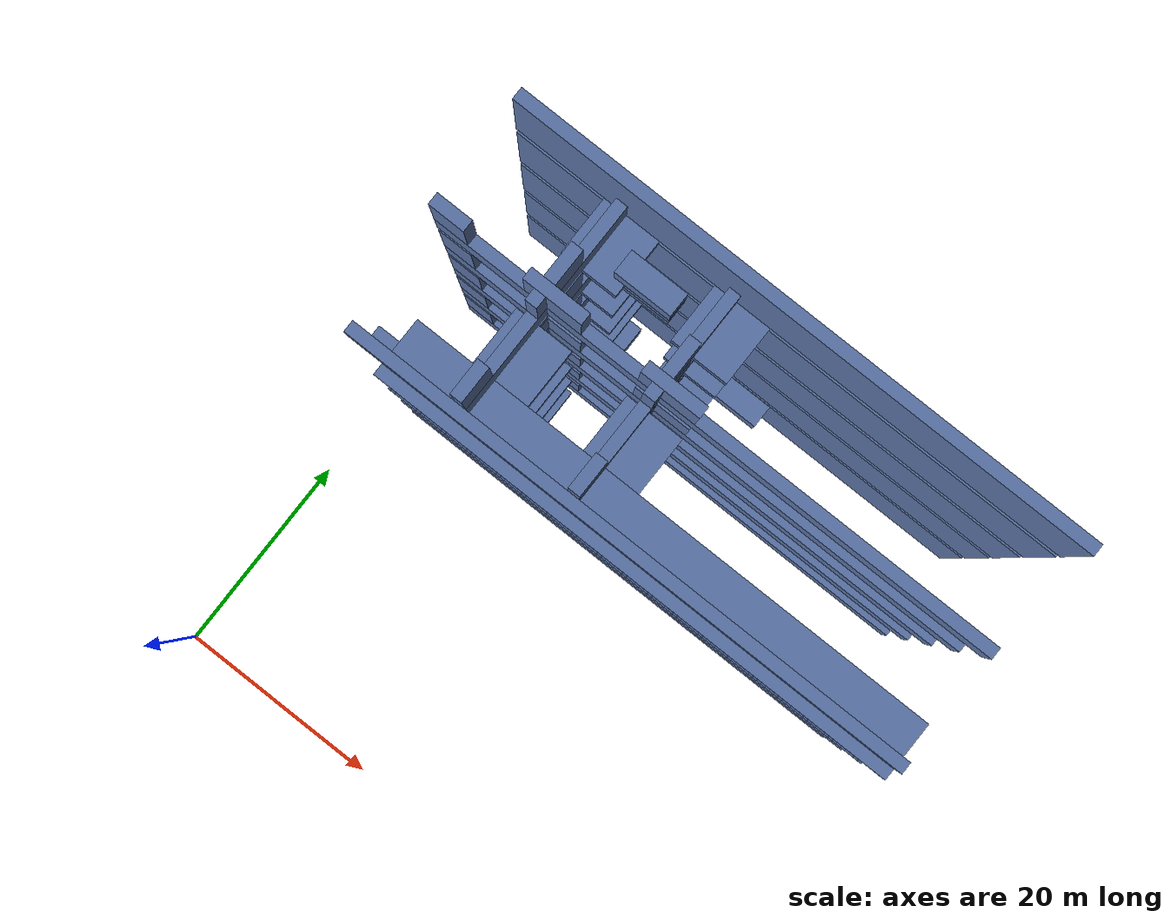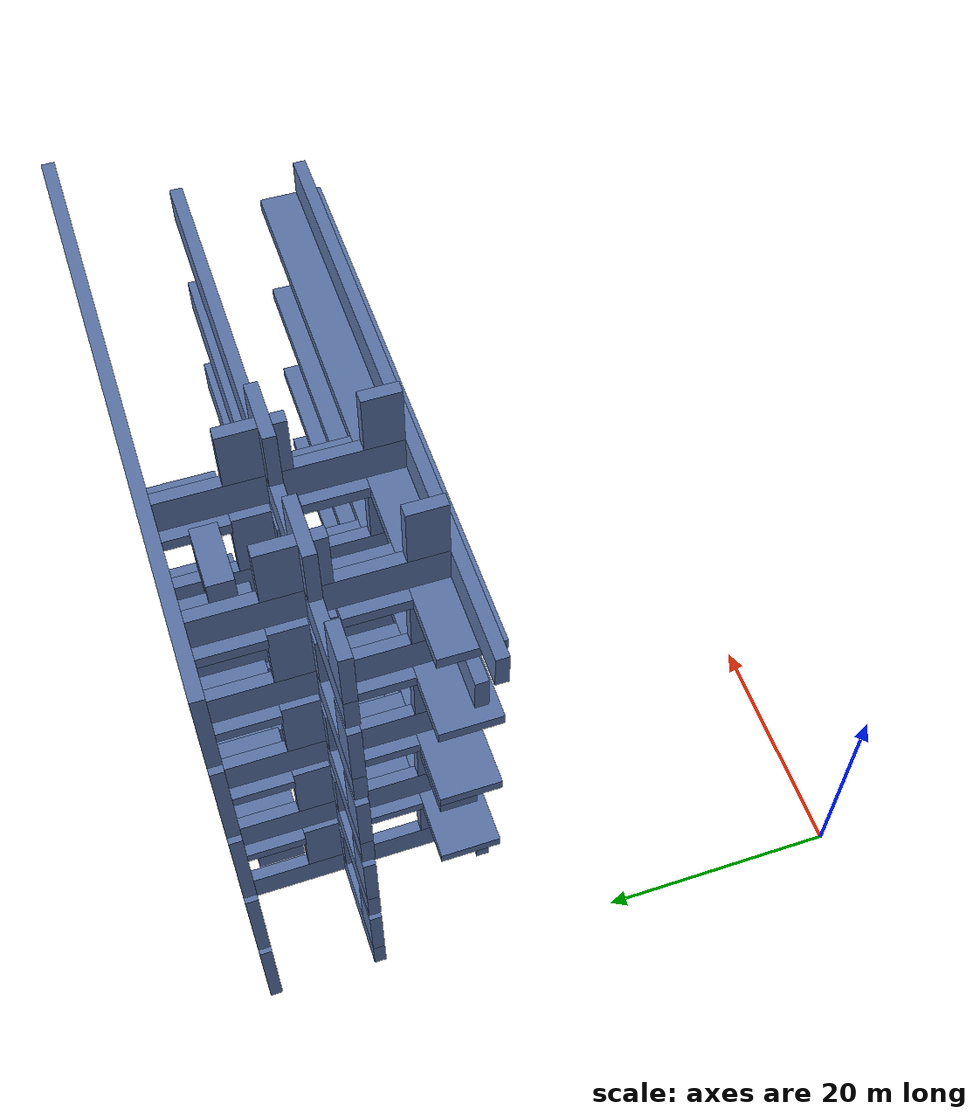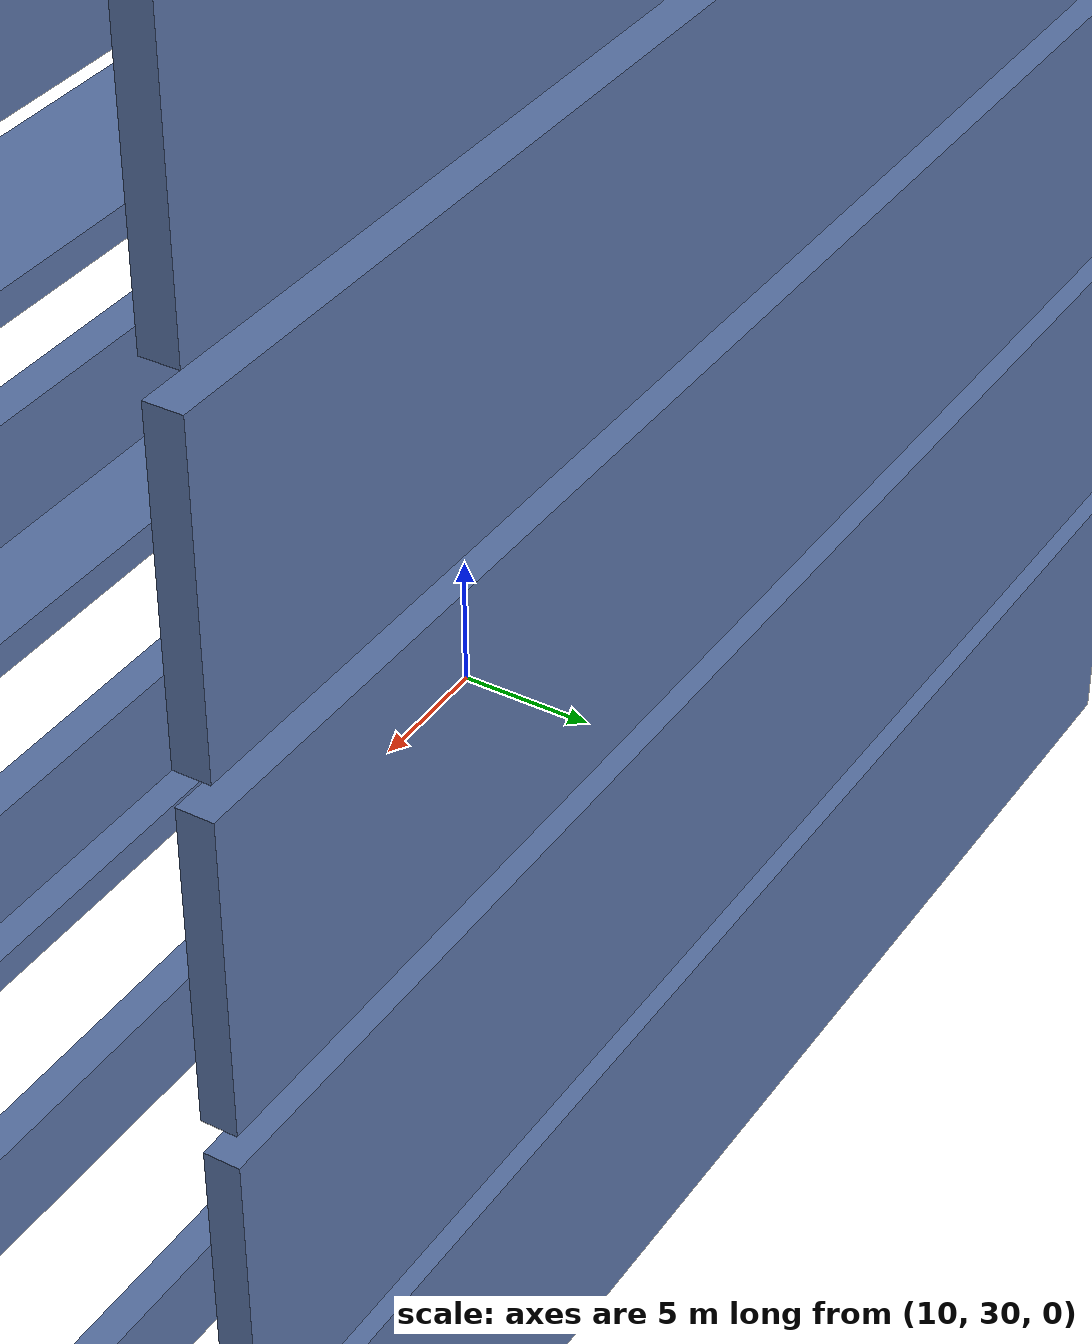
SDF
<sdf version="1.7">
 <world name="default">
  <model name="racer_env">
   <static>1</static>
   <link name="b40">
    <pose>25.500 30.500 42.500 0 0 0</pose>
    <collision name="c"><geometry><box><size>49.000 1.000 3.000</size></box></geometry></collision>
    <visual name="v">
     <geometry><box><size>49.000 1.000 3.000</size></box></geometry>
     <material><ambient>0.30 0.38 0.55 1</ambient><diffuse>0.35 0.45 0.65 1</diffuse></material>
    </visual>
   </link>
   <link name="b42">
    <pose>25.500 40.500 2.500 0 0 0</pose>
    <collision name="c"><geometry><box><size>49.000 1.000 3.000</size></box></geometry></collision>
    <visual name="v">
     <geometry><box><size>49.000 1.000 3.000</size></box></geometry>
     <material><ambient>0.30 0.38 0.55 1</ambient><diffuse>0.35 0.45 0.65 1</diffuse></material>
    </visual>
   </link>
   <link name="b43">
    <pose>2.500 40.500 7.000 0 0 0</pose>
    <collision name="c"><geometry><box><size>3.000 1.000 6.000</size></box></geometry></collision>
    <visual name="v">
     <geometry><box><size>3.000 1.000 6.000</size></box></geometry>
     <material><ambient>0.30 0.38 0.55 1</ambient><diffuse>0.35 0.45 0.65 1</diffuse></material>
    </visual>
   </link>
   <link name="b44">
    <pose>25.500 40.500 12.500 0 0 0</pose>
    <collision name="c"><geometry><box><size>49.000 1.000 3.000</size></box></geometry></collision>
    <visual name="v">
     <geometry><box><size>49.000 1.000 3.000</size></box></geometry>
     <material><ambient>0.30 0.38 0.55 1</ambient><diffuse>0.35 0.45 0.65 1</diffuse></material>
    </visual>
   </link>
   <link name="b45">
    <pose>2.500 40.500 17.000 0 0 0</pose>
    <collision name="c"><geometry><box><size>3.000 1.000 6.000</size></box></geometry></collision>
    <visual name="v">
     <geometry><box><size>3.000 1.000 6.000</size></box></geometry>
     <material><ambient>0.30 0.38 0.55 1</ambient><diffuse>0.35 0.45 0.65 1</diffuse></material>
    </visual>
   </link>
   <link name="b46">
    <pose>25.500 40.500 22.500 0 0 0</pose>
    <collision name="c"><geometry><box><size>49.000 1.000 3.000</size></box></geometry></collision>
    <visual name="v">
     <geometry><box><size>49.000 1.000 3.000</size></box></geometry>
     <material><ambient>0.30 0.38 0.55 1</ambient><diffuse>0.35 0.45 0.65 1</diffuse></material>
    </visual>
   </link>
   <link name="b47">
    <pose>2.500 40.500 27.000 0 0 0</pose>
    <collision name="c"><geometry><box><size>3.000 1.000 6.000</size></box></geometry></collision>
    <visual name="v">
     <geometry><box><size>3.000 1.000 6.000</size></box></geometry>
     <material><ambient>0.30 0.38 0.55 1</ambient><diffuse>0.35 0.45 0.65 1</diffuse></material>
    </visual>
   </link>
   <link name="b48">
    <pose>25.500 40.500 32.500 0 0 0</pose>
    <collision name="c"><geometry><box><size>49.000 1.000 3.000</size></box></geometry></collision>
    <visual name="v">
     <geometry><box><size>49.000 1.000 3.000</size></box></geometry>
     <material><ambient>0.30 0.38 0.55 1</ambient><diffuse>0.35 0.45 0.65 1</diffuse></material>
    </visual>
   </link>
   <link name="b49">
    <pose>2.500 40.500 37.000 0 0 0</pose>
    <collision name="c"><geometry><box><size>3.000 1.000 6.000</size></box></geometry></collision>
    <visual name="v">
     <geometry><box><size>3.000 1.000 6.000</size></box></geometry>
     <material><ambient>0.30 0.38 0.55 1</ambient><diffuse>0.35 0.45 0.65 1</diffuse></material>
    </visual>
   </link>
   <link name="b50">
    <pose>25.500 40.500 42.500 0 0 0</pose>
    <collision name="c"><geometry><box><size>49.000 1.000 3.000</size></box></geometry></collision>
    <visual name="v">
     <geometry><box><size>49.000 1.000 3.000</size></box></geometry>
     <material><ambient>0.30 0.38 0.55 1</ambient><diffuse>0.35 0.45 0.65 1</diffuse></material>
    </visual>
   </link>
   <link name="b51">
    <pose>2.500 40.500 46.500 0 0 0</pose>
    <collision name="c"><geometry><box><size>3.000 1.000 5.000</size></box></geometry></collision>
    <visual name="v">
     <geometry><box><size>3.000 1.000 5.000</size></box></geometry>
     <material><ambient>0.30 0.38 0.55 1</ambient><diffuse>0.35 0.45 0.65 1</diffuse></material>
    </visual>
   </link>
   <link name="b52">
    <pose>25.500 49.500 5.500 0 0 0</pose>
    <collision name="c"><geometry><box><size>49.000 1.000 9.000</size></box></geometry></collision>
    <visual name="v">
     <geometry><box><size>49.000 1.000 9.000</size></box></geometry>
     <material><ambient>0.30 0.38 0.55 1</ambient><diffuse>0.35 0.45 0.65 1</diffuse></material>
    </visual>
   </link>
   <link name="b53">
    <pose>25.500 49.500 15.500 0 0 0</pose>
    <collision name="c"><geometry><box><size>49.000 1.000 9.000</size></box></geometry></collision>
    <visual name="v">
     <geometry><box><size>49.000 1.000 9.000</size></box></geometry>
     <material><ambient>0.30 0.38 0.55 1</ambient><diffuse>0.35 0.45 0.65 1</diffuse></material>
    </visual>
   </link>
   <link name="b54">
    <pose>25.500 49.500 25.500 0 0 0</pose>
    <collision name="c"><geometry><box><size>49.000 1.000 9.000</size></box></geometry></collision>
    <visual name="v">
     <geometry><box><size>49.000 1.000 9.000</size></box></geometry>
     <material><ambient>0.30 0.38 0.55 1</ambient><diffuse>0.35 0.45 0.65 1</diffuse></material>
    </visual>
   </link>
   <link name="b55">
    <pose>25.500 49.500 35.500 0 0 0</pose>
    <collision name="c"><geometry><box><size>49.000 1.000 9.000</size></box></geometry></collision>
    <visual name="v">
     <geometry><box><size>49.000 1.000 9.000</size></box></geometry>
     <material><ambient>0.30 0.38 0.55 1</ambient><diffuse>0.35 0.45 0.65 1</diffuse></material>
    </visual>
   </link>
   <link name="b56">
    <pose>25.500 49.500 45.000 0 0 0</pose>
    <collision name="c"><geometry><box><size>49.000 1.000 8.000</size></box></geometry></collision>
    <visual name="v">
     <geometry><box><size>49.000 1.000 8.000</size></box></geometry>
     <material><ambient>0.30 0.38 0.55 1</ambient><diffuse>0.35 0.45 0.65 1</diffuse></material>
    </visual>
   </link>
   <link name="b58">
    <pose>4.500 31.500 38.500 0 0 0</pose>
    <collision name="c"><geometry><box><size>5.000 1.000 3.000</size></box></geometry></collision>
    <visual name="v">
     <geometry><box><size>5.000 1.000 3.000</size></box></geometry>
     <material><ambient>0.30 0.38 0.55 1</ambient><diffuse>0.35 0.45 0.65 1</diffuse></material>
    </visual>
   </link>
   <link name="b75">
    <pose>27.000 31.500 10.500 0 0 0</pose>
    <collision name="c"><geometry><box><size>46.000 5.000 1.000</size></box></geometry></collision>
    <visual name="v">
     <geometry><box><size>46.000 5.000 1.000</size></box></geometry>
     <material><ambient>0.30 0.38 0.55 1</ambient><diffuse>0.35 0.45 0.65 1</diffuse></material>
    </visual>
   </link>
   <link name="b76">
    <pose>27.000 31.500 20.500 0 0 0</pose>
    <collision name="c"><geometry><box><size>46.000 5.000 1.000</size></box></geometry></collision>
    <visual name="v">
     <geometry><box><size>46.000 5.000 1.000</size></box></geometry>
     <material><ambient>0.30 0.38 0.55 1</ambient><diffuse>0.35 0.45 0.65 1</diffuse></material>
    </visual>
   </link>
   <link name="b77">
    <pose>27.000 31.500 30.500 0 0 0</pose>
    <collision name="c"><geometry><box><size>46.000 5.000 1.000</size></box></geometry></collision>
    <visual name="v">
     <geometry><box><size>46.000 5.000 1.000</size></box></geometry>
     <material><ambient>0.30 0.38 0.55 1</ambient><diffuse>0.35 0.45 0.65 1</diffuse></material>
    </visual>
   </link>
   <link name="b78">
    <pose>27.000 31.500 40.500 0 0 0</pose>
    <collision name="c"><geometry><box><size>46.000 5.000 1.000</size></box></geometry></collision>
    <visual name="v">
     <geometry><box><size>46.000 5.000 1.000</size></box></geometry>
     <material><ambient>0.30 0.38 0.55 1</ambient><diffuse>0.35 0.45 0.65 1</diffuse></material>
    </visual>
   </link>
   <link name="b79">
    <pose>27.000 30.500 9.500 0 0 0</pose>
    <collision name="c"><geometry><box><size>46.000 1.000 1.000</size></box></geometry></collision>
    <visual name="v">
     <geometry><box><size>46.000 1.000 1.000</size></box></geometry>
     <material><ambient>0.30 0.38 0.55 1</ambient><diffuse>0.35 0.45 0.65 1</diffuse></material>
    </visual>
   </link>
   <link name="b83">
    <pose>6.500 32.500 19.500 0 0 0</pose>
    <collision name="c"><geometry><box><size>5.000 3.000 1.000</size></box></geometry></collision>
    <visual name="v">
     <geometry><box><size>5.000 3.000 1.000</size></box></geometry>
     <material><ambient>0.30 0.38 0.55 1</ambient><diffuse>0.35 0.45 0.65 1</diffuse></material>
    </visual>
   </link>
   <link name="b132">
    <pose>11.500 36.500 10.500 0 0 0</pose>
    <collision name="c"><geometry><box><size>5.000 5.000 1.000</size></box></geometry></collision>
    <visual name="v">
     <geometry><box><size>5.000 5.000 1.000</size></box></geometry>
     <material><ambient>0.30 0.38 0.55 1</ambient><diffuse>0.35 0.45 0.65 1</diffuse></material>
    </visual>
   </link>
   <link name="b133">
    <pose>11.500 36.500 20.500 0 0 0</pose>
    <collision name="c"><geometry><box><size>5.000 5.000 1.000</size></box></geometry></collision>
    <visual name="v">
     <geometry><box><size>5.000 5.000 1.000</size></box></geometry>
     <material><ambient>0.30 0.38 0.55 1</ambient><diffuse>0.35 0.45 0.65 1</diffuse></material>
    </visual>
   </link>
   <link name="b134">
    <pose>11.500 36.500 30.500 0 0 0</pose>
    <collision name="c"><geometry><box><size>5.000 5.000 1.000</size></box></geometry></collision>
    <visual name="v">
     <geometry><box><size>5.000 5.000 1.000</size></box></geometry>
     <material><ambient>0.30 0.38 0.55 1</ambient><diffuse>0.35 0.45 0.65 1</diffuse></material>
    </visual>
   </link>
   <link name="b135">
    <pose>11.500 36.500 40.500 0 0 0</pose>
    <collision name="c"><geometry><box><size>5.000 5.000 1.000</size></box></geometry></collision>
    <visual name="v">
     <geometry><box><size>5.000 5.000 1.000</size></box></geometry>
     <material><ambient>0.30 0.38 0.55 1</ambient><diffuse>0.35 0.45 0.65 1</diffuse></material>
    </visual>
   </link>
   <link name="b136">
    <pose>11.500 40.500 6.500 0 0 0</pose>
    <collision name="c"><geometry><box><size>5.000 1.000 5.000</size></box></geometry></collision>
    <visual name="v">
     <geometry><box><size>5.000 1.000 5.000</size></box></geometry>
     <material><ambient>0.30 0.38 0.55 1</ambient><diffuse>0.35 0.45 0.65 1</diffuse></material>
    </visual>
   </link>
   <link name="b137">
    <pose>11.500 40.500 16.500 0 0 0</pose>
    <collision name="c"><geometry><box><size>5.000 1.000 5.000</size></box></geometry></collision>
    <visual name="v">
     <geometry><box><size>5.000 1.000 5.000</size></box></geometry>
     <material><ambient>0.30 0.38 0.55 1</ambient><diffuse>0.35 0.45 0.65 1</diffuse></material>
    </visual>
   </link>
   <link name="b138">
    <pose>11.500 40.500 26.500 0 0 0</pose>
    <collision name="c"><geometry><box><size>5.000 1.000 5.000</size></box></geometry></collision>
    <visual name="v">
     <geometry><box><size>5.000 1.000 5.000</size></box></geometry>
     <material><ambient>0.30 0.38 0.55 1</ambient><diffuse>0.35 0.45 0.65 1</diffuse></material>
    </visual>
   </link>
   <link name="b139">
    <pose>11.500 40.500 36.500 0 0 0</pose>
    <collision name="c"><geometry><box><size>5.000 1.000 5.000</size></box></geometry></collision>
    <visual name="v">
     <geometry><box><size>5.000 1.000 5.000</size></box></geometry>
     <material><ambient>0.30 0.38 0.55 1</ambient><diffuse>0.35 0.45 0.65 1</diffuse></material>
    </visual>
   </link>
   <link name="b140">
    <pose>11.500 40.500 46.500 0 0 0</pose>
    <collision name="c"><geometry><box><size>5.000 1.000 5.000</size></box></geometry></collision>
    <visual name="v">
     <geometry><box><size>5.000 1.000 5.000</size></box></geometry>
     <material><ambient>0.30 0.38 0.55 1</ambient><diffuse>0.35 0.45 0.65 1</diffuse></material>
    </visual>
   </link>
   <link name="b141">
    <pose>11.500 46.500 10.500 0 0 0</pose>
    <collision name="c"><geometry><box><size>5.000 5.000 1.000</size></box></geometry></collision>
    <visual name="v">
     <geometry><box><size>5.000 5.000 1.000</size></box></geometry>
     <material><ambient>0.30 0.38 0.55 1</ambient><diffuse>0.35 0.45 0.65 1</diffuse></material>
    </visual>
   </link>
   <link name="b142">
    <pose>11.500 46.500 20.500 0 0 0</pose>
    <collision name="c"><geometry><box><size>5.000 5.000 1.000</size></box></geometry></collision>
    <visual name="v">
     <geometry><box><size>5.000 5.000 1.000</size></box></geometry>
     <material><ambient>0.30 0.38 0.55 1</ambient><diffuse>0.35 0.45 0.65 1</diffuse></material>
    </visual>
   </link>
   <link name="b143">
    <pose>11.500 46.500 30.500 0 0 0</pose>
    <collision name="c"><geometry><box><size>5.000 5.000 1.000</size></box></geometry></collision>
    <visual name="v">
     <geometry><box><size>5.000 5.000 1.000</size></box></geometry>
     <material><ambient>0.30 0.38 0.55 1</ambient><diffuse>0.35 0.45 0.65 1</diffuse></material>
    </visual>
   </link>
   <link name="b144">
    <pose>11.500 46.500 40.500 0 0 0</pose>
    <collision name="c"><geometry><box><size>5.000 5.000 1.000</size></box></geometry></collision>
    <visual name="v">
     <geometry><box><size>5.000 5.000 1.000</size></box></geometry>
     <material><ambient>0.30 0.38 0.55 1</ambient><diffuse>0.35 0.45 0.65 1</diffuse></material>
    </visual>
   </link>
   <link name="b203">
    <pose>10.500 35.500 2.500 0 0 0</pose>
    <collision name="c"><geometry><box><size>1.000 9.000 3.000</size></box></geometry></collision>
    <visual name="v">
     <geometry><box><size>1.000 9.000 3.000</size></box></geometry>
     <material><ambient>0.30 0.38 0.55 1</ambient><diffuse>0.35 0.45 0.65 1</diffuse></material>
    </visual>
   </link>
   <link name="b204">
    <pose>10.500 32.500 7.000 0 0 0</pose>
    <collision name="c"><geometry><box><size>1.000 3.000 6.000</size></box></geometry></collision>
    <visual name="v">
     <geometry><box><size>1.000 3.000 6.000</size></box></geometry>
     <material><ambient>0.30 0.38 0.55 1</ambient><diffuse>0.35 0.45 0.65 1</diffuse></material>
    </visual>
   </link>
   <link name="b205">
    <pose>10.500 35.500 12.500 0 0 0</pose>
    <collision name="c"><geometry><box><size>1.000 9.000 3.000</size></box></geometry></collision>
    <visual name="v">
     <geometry><box><size>1.000 9.000 3.000</size></box></geometry>
     <material><ambient>0.30 0.38 0.55 1</ambient><diffuse>0.35 0.45 0.65 1</diffuse></material>
    </visual>
   </link>
   <link name="b206">
    <pose>10.500 32.500 17.000 0 0 0</pose>
    <collision name="c"><geometry><box><size>1.000 3.000 6.000</size></box></geometry></collision>
    <visual name="v">
     <geometry><box><size>1.000 3.000 6.000</size></box></geometry>
     <material><ambient>0.30 0.38 0.55 1</ambient><diffuse>0.35 0.45 0.65 1</diffuse></material>
    </visual>
   </link>
   <link name="b207">
    <pose>10.500 35.500 22.500 0 0 0</pose>
    <collision name="c"><geometry><box><size>1.000 9.000 3.000</size></box></geometry></collision>
    <visual name="v">
     <geometry><box><size>1.000 9.000 3.000</size></box></geometry>
     <material><ambient>0.30 0.38 0.55 1</ambient><diffuse>0.35 0.45 0.65 1</diffuse></material>
    </visual>
   </link>
   <link name="b208">
    <pose>10.500 32.500 27.000 0 0 0</pose>
    <collision name="c"><geometry><box><size>1.000 3.000 6.000</size></box></geometry></collision>
    <visual name="v">
     <geometry><box><size>1.000 3.000 6.000</size></box></geometry>
     <material><ambient>0.30 0.38 0.55 1</ambient><diffuse>0.35 0.45 0.65 1</diffuse></material>
    </visual>
   </link>
   <link name="b209">
    <pose>10.500 35.500 32.500 0 0 0</pose>
    <collision name="c"><geometry><box><size>1.000 9.000 3.000</size></box></geometry></collision>
    <visual name="v">
     <geometry><box><size>1.000 9.000 3.000</size></box></geometry>
     <material><ambient>0.30 0.38 0.55 1</ambient><diffuse>0.35 0.45 0.65 1</diffuse></material>
    </visual>
   </link>
   <link name="b210">
    <pose>10.500 32.500 37.000 0 0 0</pose>
    <collision name="c"><geometry><box><size>1.000 3.000 6.000</size></box></geometry></collision>
    <visual name="v">
     <geometry><box><size>1.000 3.000 6.000</size></box></geometry>
     <material><ambient>0.30 0.38 0.55 1</ambient><diffuse>0.35 0.45 0.65 1</diffuse></material>
    </visual>
   </link>
   <link name="b211">
    <pose>10.500 35.500 42.500 0 0 0</pose>
    <collision name="c"><geometry><box><size>1.000 9.000 3.000</size></box></geometry></collision>
    <visual name="v">
     <geometry><box><size>1.000 9.000 3.000</size></box></geometry>
     <material><ambient>0.30 0.38 0.55 1</ambient><diffuse>0.35 0.45 0.65 1</diffuse></material>
    </visual>
   </link>
   <link name="b212">
    <pose>10.500 32.500 46.500 0 0 0</pose>
    <collision name="c"><geometry><box><size>1.000 3.000 5.000</size></box></geometry></collision>
    <visual name="v">
     <geometry><box><size>1.000 3.000 5.000</size></box></geometry>
     <material><ambient>0.30 0.38 0.55 1</ambient><diffuse>0.35 0.45 0.65 1</diffuse></material>
    </visual>
   </link>
   <link name="b213">
    <pose>10.500 37.000 9.500 0 0 0</pose>
    <collision name="c"><geometry><box><size>1.000 6.000 1.000</size></box></geometry></collision>
    <visual name="v">
     <geometry><box><size>1.000 6.000 1.000</size></box></geometry>
     <material><ambient>0.30 0.38 0.55 1</ambient><diffuse>0.35 0.45 0.65 1</diffuse></material>
    </visual>
   </link>
   <link name="b214">
    <pose>10.500 37.000 19.500 0 0 0</pose>
    <collision name="c"><geometry><box><size>1.000 6.000 1.000</size></box></geometry></collision>
    <visual name="v">
     <geometry><box><size>1.000 6.000 1.000</size></box></geometry>
     <material><ambient>0.30 0.38 0.55 1</ambient><diffuse>0.35 0.45 0.65 1</diffuse></material>
    </visual>
   </link>
   <link name="b215">
    <pose>10.500 37.000 29.500 0 0 0</pose>
    <collision name="c"><geometry><box><size>1.000 6.000 1.000</size></box></geometry></collision>
    <visual name="v">
     <geometry><box><size>1.000 6.000 1.000</size></box></geometry>
     <material><ambient>0.30 0.38 0.55 1</ambient><diffuse>0.35 0.45 0.65 1</diffuse></material>
    </visual>
   </link>
   <link name="b216">
    <pose>10.500 37.000 39.500 0 0 0</pose>
    <collision name="c"><geometry><box><size>1.000 6.000 1.000</size></box></geometry></collision>
    <visual name="v">
     <geometry><box><size>1.000 6.000 1.000</size></box></geometry>
     <material><ambient>0.30 0.38 0.55 1</ambient><diffuse>0.35 0.45 0.65 1</diffuse></material>
    </visual>
   </link>
   <link name="b217">
    <pose>10.500 39.500 6.500 0 0 0</pose>
    <collision name="c"><geometry><box><size>1.000 1.000 5.000</size></box></geometry></collision>
    <visual name="v">
     <geometry><box><size>1.000 1.000 5.000</size></box></geometry>
     <material><ambient>0.30 0.38 0.55 1</ambient><diffuse>0.35 0.45 0.65 1</diffuse></material>
    </visual>
   </link>
   <link name="b218">
    <pose>10.500 39.500 16.500 0 0 0</pose>
    <collision name="c"><geometry><box><size>1.000 1.000 5.000</size></box></geometry></collision>
    <visual name="v">
     <geometry><box><size>1.000 1.000 5.000</size></box></geometry>
     <material><ambient>0.30 0.38 0.55 1</ambient><diffuse>0.35 0.45 0.65 1</diffuse></material>
    </visual>
   </link>
   <link name="b219">
    <pose>10.500 39.500 26.500 0 0 0</pose>
    <collision name="c"><geometry><box><size>1.000 1.000 5.000</size></box></geometry></collision>
    <visual name="v">
     <geometry><box><size>1.000 1.000 5.000</size></box></geometry>
     <material><ambient>0.30 0.38 0.55 1</ambient><diffuse>0.35 0.45 0.65 1</diffuse></material>
    </visual>
   </link>
   <link name="b220">
    <pose>10.500 39.500 36.500 0 0 0</pose>
    <collision name="c"><geometry><box><size>1.000 1.000 5.000</size></box></geometry></collision>
    <visual name="v">
     <geometry><box><size>1.000 1.000 5.000</size></box></geometry>
     <material><ambient>0.30 0.38 0.55 1</ambient><diffuse>0.35 0.45 0.65 1</diffuse></material>
    </visual>
   </link>
   <link name="b221">
    <pose>10.500 39.500 46.500 0 0 0</pose>
    <collision name="c"><geometry><box><size>1.000 1.000 5.000</size></box></geometry></collision>
    <visual name="v">
     <geometry><box><size>1.000 1.000 5.000</size></box></geometry>
     <material><ambient>0.30 0.38 0.55 1</ambient><diffuse>0.35 0.45 0.65 1</diffuse></material>
    </visual>
   </link>
   <link name="b222">
    <pose>10.500 45.000 2.500 0 0 0</pose>
    <collision name="c"><geometry><box><size>1.000 8.000 3.000</size></box></geometry></collision>
    <visual name="v">
     <geometry><box><size>1.000 8.000 3.000</size></box></geometry>
     <material><ambient>0.30 0.38 0.55 1</ambient><diffuse>0.35 0.45 0.65 1</diffuse></material>
    </visual>
   </link>
   <link name="b223">
    <pose>10.500 42.500 7.000 0 0 0</pose>
    <collision name="c"><geometry><box><size>1.000 3.000 6.000</size></box></geometry></collision>
    <visual name="v">
     <geometry><box><size>1.000 3.000 6.000</size></box></geometry>
     <material><ambient>0.30 0.38 0.55 1</ambient><diffuse>0.35 0.45 0.65 1</diffuse></material>
    </visual>
   </link>
   <link name="b224">
    <pose>10.500 45.000 12.500 0 0 0</pose>
    <collision name="c"><geometry><box><size>1.000 8.000 3.000</size></box></geometry></collision>
    <visual name="v">
     <geometry><box><size>1.000 8.000 3.000</size></box></geometry>
     <material><ambient>0.30 0.38 0.55 1</ambient><diffuse>0.35 0.45 0.65 1</diffuse></material>
    </visual>
   </link>
   <link name="b225">
    <pose>10.500 42.500 17.000 0 0 0</pose>
    <collision name="c"><geometry><box><size>1.000 3.000 6.000</size></box></geometry></collision>
    <visual name="v">
     <geometry><box><size>1.000 3.000 6.000</size></box></geometry>
     <material><ambient>0.30 0.38 0.55 1</ambient><diffuse>0.35 0.45 0.65 1</diffuse></material>
    </visual>
   </link>
   <link name="b226">
    <pose>10.500 45.000 22.500 0 0 0</pose>
    <collision name="c"><geometry><box><size>1.000 8.000 3.000</size></box></geometry></collision>
    <visual name="v">
     <geometry><box><size>1.000 8.000 3.000</size></box></geometry>
     <material><ambient>0.30 0.38 0.55 1</ambient><diffuse>0.35 0.45 0.65 1</diffuse></material>
    </visual>
   </link>
   <link name="b227">
    <pose>10.500 42.500 27.000 0 0 0</pose>
    <collision name="c"><geometry><box><size>1.000 3.000 6.000</size></box></geometry></collision>
    <visual name="v">
     <geometry><box><size>1.000 3.000 6.000</size></box></geometry>
     <material><ambient>0.30 0.38 0.55 1</ambient><diffuse>0.35 0.45 0.65 1</diffuse></material>
    </visual>
   </link>
   <link name="b228">
    <pose>10.500 45.000 32.500 0 0 0</pose>
    <collision name="c"><geometry><box><size>1.000 8.000 3.000</size></box></geometry></collision>
    <visual name="v">
     <geometry><box><size>1.000 8.000 3.000</size></box></geometry>
     <material><ambient>0.30 0.38 0.55 1</ambient><diffuse>0.35 0.45 0.65 1</diffuse></material>
    </visual>
   </link>
   <link name="b229">
    <pose>10.500 42.500 37.000 0 0 0</pose>
    <collision name="c"><geometry><box><size>1.000 3.000 6.000</size></box></geometry></collision>
    <visual name="v">
     <geometry><box><size>1.000 3.000 6.000</size></box></geometry>
     <material><ambient>0.30 0.38 0.55 1</ambient><diffuse>0.35 0.45 0.65 1</diffuse></material>
    </visual>
   </link>
   <link name="b230">
    <pose>10.500 45.000 42.500 0 0 0</pose>
    <collision name="c"><geometry><box><size>1.000 8.000 3.000</size></box></geometry></collision>
    <visual name="v">
     <geometry><box><size>1.000 8.000 3.000</size></box></geometry>
     <material><ambient>0.30 0.38 0.55 1</ambient><diffuse>0.35 0.45 0.65 1</diffuse></material>
    </visual>
   </link>
   <link name="b231">
    <pose>10.500 42.500 46.500 0 0 0</pose>
    <collision name="c"><geometry><box><size>1.000 3.000 5.000</size></box></geometry></collision>
    <visual name="v">
     <geometry><box><size>1.000 3.000 5.000</size></box></geometry>
     <material><ambient>0.30 0.38 0.55 1</ambient><diffuse>0.35 0.45 0.65 1</diffuse></material>
    </visual>
   </link>
   <link name="b232">
    <pose>10.500 46.500 9.500 0 0 0</pose>
    <collision name="c"><geometry><box><size>1.000 5.000 1.000</size></box></geometry></collision>
    <visual name="v">
     <geometry><box><size>1.000 5.000 1.000</size></box></geometry>
     <material><ambient>0.30 0.38 0.55 1</ambient><diffuse>0.35 0.45 0.65 1</diffuse></material>
    </visual>
   </link>
   <link name="b233">
    <pose>10.500 46.500 19.500 0 0 0</pose>
    <collision name="c"><geometry><box><size>1.000 5.000 1.000</size></box></geometry></collision>
    <visual name="v">
     <geometry><box><size>1.000 5.000 1.000</size></box></geometry>
     <material><ambient>0.30 0.38 0.55 1</ambient><diffuse>0.35 0.45 0.65 1</diffuse></material>
    </visual>
   </link>
   <link name="b234">
    <pose>10.500 46.500 29.500 0 0 0</pose>
    <collision name="c"><geometry><box><size>1.000 5.000 1.000</size></box></geometry></collision>
    <visual name="v">
     <geometry><box><size>1.000 5.000 1.000</size></box></geometry>
     <material><ambient>0.30 0.38 0.55 1</ambient><diffuse>0.35 0.45 0.65 1</diffuse></material>
    </visual>
   </link>
   <link name="b235">
    <pose>10.500 46.500 39.500 0 0 0</pose>
    <collision name="c"><geometry><box><size>1.000 5.000 1.000</size></box></geometry></collision>
    <visual name="v">
     <geometry><box><size>1.000 5.000 1.000</size></box></geometry>
     <material><ambient>0.30 0.38 0.55 1</ambient><diffuse>0.35 0.45 0.65 1</diffuse></material>
    </visual>
   </link>
   <link name="b237">
    <pose>13.500 46.000 3.500 0 0 0</pose>
    <collision name="c"><geometry><box><size>3.000 4.000 3.000</size></box></geometry></collision>
    <visual name="v">
     <geometry><box><size>3.000 4.000 3.000</size></box></geometry>
     <material><ambient>0.30 0.38 0.55 1</ambient><diffuse>0.35 0.45 0.65 1</diffuse></material>
    </visual>
   </link>
   <link name="b238">
    <pose>15.500 46.000 39.500 0 0 0</pose>
    <collision name="c"><geometry><box><size>5.000 2.000 1.000</size></box></geometry></collision>
    <visual name="v">
     <geometry><box><size>5.000 2.000 1.000</size></box></geometry>
     <material><ambient>0.30 0.38 0.55 1</ambient><diffuse>0.35 0.45 0.65 1</diffuse></material>
    </visual>
   </link>
   <link name="b239">
    <pose>15.500 46.000 42.000 0 0 0</pose>
    <collision name="c"><geometry><box><size>5.000 2.000 2.000</size></box></geometry></collision>
    <visual name="v">
     <geometry><box><size>5.000 2.000 2.000</size></box></geometry>
     <material><ambient>0.30 0.38 0.55 1</ambient><diffuse>0.35 0.45 0.65 1</diffuse></material>
    </visual>
   </link>
   <link name="b241">
    <pose>16.000 46.000 40.500 0 0 0</pose>
    <collision name="c"><geometry><box><size>4.000 2.000 1.000</size></box></geometry></collision>
    <visual name="v">
     <geometry><box><size>4.000 2.000 1.000</size></box></geometry>
     <material><ambient>0.30 0.38 0.55 1</ambient><diffuse>0.35 0.45 0.65 1</diffuse></material>
    </visual>
   </link>
   <link name="b245">
    <pose>19.500 39.000 3.500 0 0 0</pose>
    <collision name="c"><geometry><box><size>3.000 2.000 1.000</size></box></geometry></collision>
    <visual name="v">
     <geometry><box><size>3.000 2.000 1.000</size></box></geometry>
     <material><ambient>0.30 0.38 0.55 1</ambient><diffuse>0.35 0.45 0.65 1</diffuse></material>
    </visual>
   </link>
   <link name="b246">
    <pose>19.000 39.000 6.000 0 0 0</pose>
    <collision name="c"><geometry><box><size>2.000 2.000 4.000</size></box></geometry></collision>
    <visual name="v">
     <geometry><box><size>2.000 2.000 4.000</size></box></geometry>
     <material><ambient>0.30 0.38 0.55 1</ambient><diffuse>0.35 0.45 0.65 1</diffuse></material>
    </visual>
   </link>
   <link name="b274">
    <pose>21.500 36.500 10.500 0 0 0</pose>
    <collision name="c"><geometry><box><size>5.000 5.000 1.000</size></box></geometry></collision>
    <visual name="v">
     <geometry><box><size>5.000 5.000 1.000</size></box></geometry>
     <material><ambient>0.30 0.38 0.55 1</ambient><diffuse>0.35 0.45 0.65 1</diffuse></material>
    </visual>
   </link>
   <link name="b275">
    <pose>21.500 36.500 20.500 0 0 0</pose>
    <collision name="c"><geometry><box><size>5.000 5.000 1.000</size></box></geometry></collision>
    <visual name="v">
     <geometry><box><size>5.000 5.000 1.000</size></box></geometry>
     <material><ambient>0.30 0.38 0.55 1</ambient><diffuse>0.35 0.45 0.65 1</diffuse></material>
    </visual>
   </link>
   <link name="b276">
    <pose>21.500 36.500 30.500 0 0 0</pose>
    <collision name="c"><geometry><box><size>5.000 5.000 1.000</size></box></geometry></collision>
    <visual name="v">
     <geometry><box><size>5.000 5.000 1.000</size></box></geometry>
     <material><ambient>0.30 0.38 0.55 1</ambient><diffuse>0.35 0.45 0.65 1</diffuse></material>
    </visual>
   </link>
   <link name="b277">
    <pose>21.500 36.500 40.500 0 0 0</pose>
    <collision name="c"><geometry><box><size>5.000 5.000 1.000</size></box></geometry></collision>
    <visual name="v">
     <geometry><box><size>5.000 5.000 1.000</size></box></geometry>
     <material><ambient>0.30 0.38 0.55 1</ambient><diffuse>0.35 0.45 0.65 1</diffuse></material>
    </visual>
   </link>
   <link name="b278">
    <pose>21.500 40.500 6.500 0 0 0</pose>
    <collision name="c"><geometry><box><size>5.000 1.000 5.000</size></box></geometry></collision>
    <visual name="v">
     <geometry><box><size>5.000 1.000 5.000</size></box></geometry>
     <material><ambient>0.30 0.38 0.55 1</ambient><diffuse>0.35 0.45 0.65 1</diffuse></material>
    </visual>
   </link>
   <link name="b279">
    <pose>21.500 40.500 16.500 0 0 0</pose>
    <collision name="c"><geometry><box><size>5.000 1.000 5.000</size></box></geometry></collision>
    <visual name="v">
     <geometry><box><size>5.000 1.000 5.000</size></box></geometry>
     <material><ambient>0.30 0.38 0.55 1</ambient><diffuse>0.35 0.45 0.65 1</diffuse></material>
    </visual>
   </link>
   <link name="b280">
    <pose>21.500 40.500 26.500 0 0 0</pose>
    <collision name="c"><geometry><box><size>5.000 1.000 5.000</size></box></geometry></collision>
    <visual name="v">
     <geometry><box><size>5.000 1.000 5.000</size></box></geometry>
     <material><ambient>0.30 0.38 0.55 1</ambient><diffuse>0.35 0.45 0.65 1</diffuse></material>
    </visual>
   </link>
   <link name="b281">
    <pose>21.500 40.500 36.500 0 0 0</pose>
    <collision name="c"><geometry><box><size>5.000 1.000 5.000</size></box></geometry></collision>
    <visual name="v">
     <geometry><box><size>5.000 1.000 5.000</size></box></geometry>
     <material><ambient>0.30 0.38 0.55 1</ambient><diffuse>0.35 0.45 0.65 1</diffuse></material>
    </visual>
   </link>
   <link name="b282">
    <pose>21.500 40.500 46.500 0 0 0</pose>
    <collision name="c"><geometry><box><size>5.000 1.000 5.000</size></box></geometry></collision>
    <visual name="v">
     <geometry><box><size>5.000 1.000 5.000</size></box></geometry>
     <material><ambient>0.30 0.38 0.55 1</ambient><diffuse>0.35 0.45 0.65 1</diffuse></material>
    </visual>
   </link>
   <link name="b283">
    <pose>21.500 46.500 10.500 0 0 0</pose>
    <collision name="c"><geometry><box><size>5.000 5.000 1.000</size></box></geometry></collision>
    <visual name="v">
     <geometry><box><size>5.000 5.000 1.000</size></box></geometry>
     <material><ambient>0.30 0.38 0.55 1</ambient><diffuse>0.35 0.45 0.65 1</diffuse></material>
    </visual>
   </link>
   <link name="b284">
    <pose>21.500 46.500 20.500 0 0 0</pose>
    <collision name="c"><geometry><box><size>5.000 5.000 1.000</size></box></geometry></collision>
    <visual name="v">
     <geometry><box><size>5.000 5.000 1.000</size></box></geometry>
     <material><ambient>0.30 0.38 0.55 1</ambient><diffuse>0.35 0.45 0.65 1</diffuse></material>
    </visual>
   </link>
   <link name="b285">
    <pose>21.500 46.500 30.500 0 0 0</pose>
    <collision name="c"><geometry><box><size>5.000 5.000 1.000</size></box></geometry></collision>
    <visual name="v">
     <geometry><box><size>5.000 5.000 1.000</size></box></geometry>
     <material><ambient>0.30 0.38 0.55 1</ambient><diffuse>0.35 0.45 0.65 1</diffuse></material>
    </visual>
   </link>
   <link name="b286">
    <pose>21.500 46.500 40.500 0 0 0</pose>
    <collision name="c"><geometry><box><size>5.000 5.000 1.000</size></box></geometry></collision>
    <visual name="v">
     <geometry><box><size>5.000 5.000 1.000</size></box></geometry>
     <material><ambient>0.30 0.38 0.55 1</ambient><diffuse>0.35 0.45 0.65 1</diffuse></material>
    </visual>
   </link>
   <link name="b348">
    <pose>20.500 35.500 2.000 0 0 0</pose>
    <collision name="c"><geometry><box><size>1.000 9.000 2.000</size></box></geometry></collision>
    <visual name="v">
     <geometry><box><size>1.000 9.000 2.000</size></box></geometry>
     <material><ambient>0.30 0.38 0.55 1</ambient><diffuse>0.35 0.45 0.65 1</diffuse></material>
    </visual>
   </link>
   <link name="b349">
    <pose>20.500 34.500 3.500 0 0 0</pose>
    <collision name="c"><geometry><box><size>1.000 7.000 1.000</size></box></geometry></collision>
    <visual name="v">
     <geometry><box><size>1.000 7.000 1.000</size></box></geometry>
     <material><ambient>0.30 0.38 0.55 1</ambient><diffuse>0.35 0.45 0.65 1</diffuse></material>
    </visual>
   </link>
   <link name="b350">
    <pose>20.500 32.500 7.000 0 0 0</pose>
    <collision name="c"><geometry><box><size>1.000 3.000 6.000</size></box></geometry></collision>
    <visual name="v">
     <geometry><box><size>1.000 3.000 6.000</size></box></geometry>
     <material><ambient>0.30 0.38 0.55 1</ambient><diffuse>0.35 0.45 0.65 1</diffuse></material>
    </visual>
   </link>
   <link name="b351">
    <pose>20.500 35.500 12.500 0 0 0</pose>
    <collision name="c"><geometry><box><size>1.000 9.000 3.000</size></box></geometry></collision>
    <visual name="v">
     <geometry><box><size>1.000 9.000 3.000</size></box></geometry>
     <material><ambient>0.30 0.38 0.55 1</ambient><diffuse>0.35 0.45 0.65 1</diffuse></material>
    </visual>
   </link>
   <link name="b352">
    <pose>20.500 32.500 17.000 0 0 0</pose>
    <collision name="c"><geometry><box><size>1.000 3.000 6.000</size></box></geometry></collision>
    <visual name="v">
     <geometry><box><size>1.000 3.000 6.000</size></box></geometry>
     <material><ambient>0.30 0.38 0.55 1</ambient><diffuse>0.35 0.45 0.65 1</diffuse></material>
    </visual>
   </link>
   <link name="b353">
    <pose>20.500 35.500 22.500 0 0 0</pose>
    <collision name="c"><geometry><box><size>1.000 9.000 3.000</size></box></geometry></collision>
    <visual name="v">
     <geometry><box><size>1.000 9.000 3.000</size></box></geometry>
     <material><ambient>0.30 0.38 0.55 1</ambient><diffuse>0.35 0.45 0.65 1</diffuse></material>
    </visual>
   </link>
   <link name="b354">
    <pose>20.500 32.500 27.000 0 0 0</pose>
    <collision name="c"><geometry><box><size>1.000 3.000 6.000</size></box></geometry></collision>
    <visual name="v">
     <geometry><box><size>1.000 3.000 6.000</size></box></geometry>
     <material><ambient>0.30 0.38 0.55 1</ambient><diffuse>0.35 0.45 0.65 1</diffuse></material>
    </visual>
   </link>
   <link name="b355">
    <pose>20.500 35.500 32.500 0 0 0</pose>
    <collision name="c"><geometry><box><size>1.000 9.000 3.000</size></box></geometry></collision>
    <visual name="v">
     <geometry><box><size>1.000 9.000 3.000</size></box></geometry>
     <material><ambient>0.30 0.38 0.55 1</ambient><diffuse>0.35 0.45 0.65 1</diffuse></material>
    </visual>
   </link>
   <link name="b356">
    <pose>20.500 32.500 37.000 0 0 0</pose>
    <collision name="c"><geometry><box><size>1.000 3.000 6.000</size></box></geometry></collision>
    <visual name="v">
     <geometry><box><size>1.000 3.000 6.000</size></box></geometry>
     <material><ambient>0.30 0.38 0.55 1</ambient><diffuse>0.35 0.45 0.65 1</diffuse></material>
    </visual>
   </link>
   <link name="b357">
    <pose>20.500 35.500 42.500 0 0 0</pose>
    <collision name="c"><geometry><box><size>1.000 9.000 3.000</size></box></geometry></collision>
    <visual name="v">
     <geometry><box><size>1.000 9.000 3.000</size></box></geometry>
     <material><ambient>0.30 0.38 0.55 1</ambient><diffuse>0.35 0.45 0.65 1</diffuse></material>
    </visual>
   </link>
   <link name="b358">
    <pose>20.500 32.500 46.500 0 0 0</pose>
    <collision name="c"><geometry><box><size>1.000 3.000 5.000</size></box></geometry></collision>
    <visual name="v">
     <geometry><box><size>1.000 3.000 5.000</size></box></geometry>
     <material><ambient>0.30 0.38 0.55 1</ambient><diffuse>0.35 0.45 0.65 1</diffuse></material>
    </visual>
   </link>
   <link name="b359">
    <pose>20.500 37.000 9.500 0 0 0</pose>
    <collision name="c"><geometry><box><size>1.000 6.000 1.000</size></box></geometry></collision>
    <visual name="v">
     <geometry><box><size>1.000 6.000 1.000</size></box></geometry>
     <material><ambient>0.30 0.38 0.55 1</ambient><diffuse>0.35 0.45 0.65 1</diffuse></material>
    </visual>
   </link>
   <link name="b360">
    <pose>20.500 37.000 19.500 0 0 0</pose>
    <collision name="c"><geometry><box><size>1.000 6.000 1.000</size></box></geometry></collision>
    <visual name="v">
     <geometry><box><size>1.000 6.000 1.000</size></box></geometry>
     <material><ambient>0.30 0.38 0.55 1</ambient><diffuse>0.35 0.45 0.65 1</diffuse></material>
    </visual>
   </link>
   <link name="b361">
    <pose>20.500 37.000 29.500 0 0 0</pose>
    <collision name="c"><geometry><box><size>1.000 6.000 1.000</size></box></geometry></collision>
    <visual name="v">
     <geometry><box><size>1.000 6.000 1.000</size></box></geometry>
     <material><ambient>0.30 0.38 0.55 1</ambient><diffuse>0.35 0.45 0.65 1</diffuse></material>
    </visual>
   </link>
   <link name="b362">
    <pose>20.500 37.000 39.500 0 0 0</pose>
    <collision name="c"><geometry><box><size>1.000 6.000 1.000</size></box></geometry></collision>
    <visual name="v">
     <geometry><box><size>1.000 6.000 1.000</size></box></geometry>
     <material><ambient>0.30 0.38 0.55 1</ambient><diffuse>0.35 0.45 0.65 1</diffuse></material>
    </visual>
   </link>
   <link name="b363">
    <pose>20.500 39.500 6.500 0 0 0</pose>
    <collision name="c"><geometry><box><size>1.000 1.000 5.000</size></box></geometry></collision>
    <visual name="v">
     <geometry><box><size>1.000 1.000 5.000</size></box></geometry>
     <material><ambient>0.30 0.38 0.55 1</ambient><diffuse>0.35 0.45 0.65 1</diffuse></material>
    </visual>
   </link>
   <link name="b364">
    <pose>20.500 39.500 16.500 0 0 0</pose>
    <collision name="c"><geometry><box><size>1.000 1.000 5.000</size></box></geometry></collision>
    <visual name="v">
     <geometry><box><size>1.000 1.000 5.000</size></box></geometry>
     <material><ambient>0.30 0.38 0.55 1</ambient><diffuse>0.35 0.45 0.65 1</diffuse></material>
    </visual>
   </link>
   <link name="b365">
    <pose>20.500 39.500 26.500 0 0 0</pose>
    <collision name="c"><geometry><box><size>1.000 1.000 5.000</size></box></geometry></collision>
    <visual name="v">
     <geometry><box><size>1.000 1.000 5.000</size></box></geometry>
     <material><ambient>0.30 0.38 0.55 1</ambient><diffuse>0.35 0.45 0.65 1</diffuse></material>
    </visual>
   </link>
   <link name="b366">
    <pose>20.500 39.500 36.500 0 0 0</pose>
    <collision name="c"><geometry><box><size>1.000 1.000 5.000</size></box></geometry></collision>
    <visual name="v">
     <geometry><box><size>1.000 1.000 5.000</size></box></geometry>
     <material><ambient>0.30 0.38 0.55 1</ambient><diffuse>0.35 0.45 0.65 1</diffuse></material>
    </visual>
   </link>
   <link name="b367">
    <pose>20.500 39.500 46.500 0 0 0</pose>
    <collision name="c"><geometry><box><size>1.000 1.000 5.000</size></box></geometry></collision>
    <visual name="v">
     <geometry><box><size>1.000 1.000 5.000</size></box></geometry>
     <material><ambient>0.30 0.38 0.55 1</ambient><diffuse>0.35 0.45 0.65 1</diffuse></material>
    </visual>
   </link>
   <link name="b368">
    <pose>20.500 45.000 2.500 0 0 0</pose>
    <collision name="c"><geometry><box><size>1.000 8.000 3.000</size></box></geometry></collision>
    <visual name="v">
     <geometry><box><size>1.000 8.000 3.000</size></box></geometry>
     <material><ambient>0.30 0.38 0.55 1</ambient><diffuse>0.35 0.45 0.65 1</diffuse></material>
    </visual>
   </link>
   <link name="b369">
    <pose>20.500 42.500 7.000 0 0 0</pose>
    <collision name="c"><geometry><box><size>1.000 3.000 6.000</size></box></geometry></collision>
    <visual name="v">
     <geometry><box><size>1.000 3.000 6.000</size></box></geometry>
     <material><ambient>0.30 0.38 0.55 1</ambient><diffuse>0.35 0.45 0.65 1</diffuse></material>
    </visual>
   </link>
   <link name="b370">
    <pose>20.500 45.000 12.500 0 0 0</pose>
    <collision name="c"><geometry><box><size>1.000 8.000 3.000</size></box></geometry></collision>
    <visual name="v">
     <geometry><box><size>1.000 8.000 3.000</size></box></geometry>
     <material><ambient>0.30 0.38 0.55 1</ambient><diffuse>0.35 0.45 0.65 1</diffuse></material>
    </visual>
   </link>
   <link name="b371">
    <pose>20.500 42.500 17.000 0 0 0</pose>
    <collision name="c"><geometry><box><size>1.000 3.000 6.000</size></box></geometry></collision>
    <visual name="v">
     <geometry><box><size>1.000 3.000 6.000</size></box></geometry>
     <material><ambient>0.30 0.38 0.55 1</ambient><diffuse>0.35 0.45 0.65 1</diffuse></material>
    </visual>
   </link>
   <link name="b372">
    <pose>20.500 45.000 22.500 0 0 0</pose>
    <collision name="c"><geometry><box><size>1.000 8.000 3.000</size></box></geometry></collision>
    <visual name="v">
     <geometry><box><size>1.000 8.000 3.000</size></box></geometry>
     <material><ambient>0.30 0.38 0.55 1</ambient><diffuse>0.35 0.45 0.65 1</diffuse></material>
    </visual>
   </link>
   <link name="b373">
    <pose>20.500 42.500 27.000 0 0 0</pose>
    <collision name="c"><geometry><box><size>1.000 3.000 6.000</size></box></geometry></collision>
    <visual name="v">
     <geometry><box><size>1.000 3.000 6.000</size></box></geometry>
     <material><ambient>0.30 0.38 0.55 1</ambient><diffuse>0.35 0.45 0.65 1</diffuse></material>
    </visual>
   </link>
   <link name="b374">
    <pose>20.500 45.000 32.500 0 0 0</pose>
    <collision name="c"><geometry><box><size>1.000 8.000 3.000</size></box></geometry></collision>
    <visual name="v">
     <geometry><box><size>1.000 8.000 3.000</size></box></geometry>
     <material><ambient>0.30 0.38 0.55 1</ambient><diffuse>0.35 0.45 0.65 1</diffuse></material>
    </visual>
   </link>
   <link name="b375">
    <pose>20.500 42.500 37.000 0 0 0</pose>
    <collision name="c"><geometry><box><size>1.000 3.000 6.000</size></box></geometry></collision>
    <visual name="v">
     <geometry><box><size>1.000 3.000 6.000</size></box></geometry>
     <material><ambient>0.30 0.38 0.55 1</ambient><diffuse>0.35 0.45 0.65 1</diffuse></material>
    </visual>
   </link>
   <link name="b376">
    <pose>20.500 45.000 42.500 0 0 0</pose>
    <collision name="c"><geometry><box><size>1.000 8.000 3.000</size></box></geometry></collision>
    <visual name="v">
     <geometry><box><size>1.000 8.000 3.000</size></box></geometry>
     <material><ambient>0.30 0.38 0.55 1</ambient><diffuse>0.35 0.45 0.65 1</diffuse></material>
    </visual>
   </link>
   <link name="b377">
    <pose>20.500 42.500 46.500 0 0 0</pose>
    <collision name="c"><geometry><box><size>1.000 3.000 5.000</size></box></geometry></collision>
    <visual name="v">
     <geometry><box><size>1.000 3.000 5.000</size></box></geometry>
     <material><ambient>0.30 0.38 0.55 1</ambient><diffuse>0.35 0.45 0.65 1</diffuse></material>
    </visual>
   </link>
   <link name="b378">
    <pose>20.500 46.500 9.500 0 0 0</pose>
    <collision name="c"><geometry><box><size>1.000 5.000 1.000</size></box></geometry></collision>
    <visual name="v">
     <geometry><box><size>1.000 5.000 1.000</size></box></geometry>
     <material><ambient>0.30 0.38 0.55 1</ambient><diffuse>0.35 0.45 0.65 1</diffuse></material>
    </visual>
   </link>
   <link name="b379">
    <pose>20.500 46.500 19.500 0 0 0</pose>
    <collision name="c"><geometry><box><size>1.000 5.000 1.000</size></box></geometry></collision>
    <visual name="v">
     <geometry><box><size>1.000 5.000 1.000</size></box></geometry>
     <material><ambient>0.30 0.38 0.55 1</ambient><diffuse>0.35 0.45 0.65 1</diffuse></material>
    </visual>
   </link>
   <link name="b380">
    <pose>20.500 46.500 29.500 0 0 0</pose>
    <collision name="c"><geometry><box><size>1.000 5.000 1.000</size></box></geometry></collision>
    <visual name="v">
     <geometry><box><size>1.000 5.000 1.000</size></box></geometry>
     <material><ambient>0.30 0.38 0.55 1</ambient><diffuse>0.35 0.45 0.65 1</diffuse></material>
    </visual>
   </link>
   <link name="b381">
    <pose>20.500 46.500 39.500 0 0 0</pose>
    <collision name="c"><geometry><box><size>1.000 5.000 1.000</size></box></geometry></collision>
    <visual name="v">
     <geometry><box><size>1.000 5.000 1.000</size></box></geometry>
     <material><ambient>0.30 0.38 0.55 1</ambient><diffuse>0.35 0.45 0.65 1</diffuse></material>
    </visual>
   </link>
   <link name="b385">
    <pose>26.000 46.000 23.000 0 0 0</pose>
    <collision name="c"><geometry><box><size>4.000 2.000 2.000</size></box></geometry></collision>
    <visual name="v">
     <geometry><box><size>4.000 2.000 2.000</size></box></geometry>
     <material><ambient>0.30 0.38 0.55 1</ambient><diffuse>0.35 0.45 0.65 1</diffuse></material>
    </visual>
   </link>
  </model>
 </world>
</sdf>
